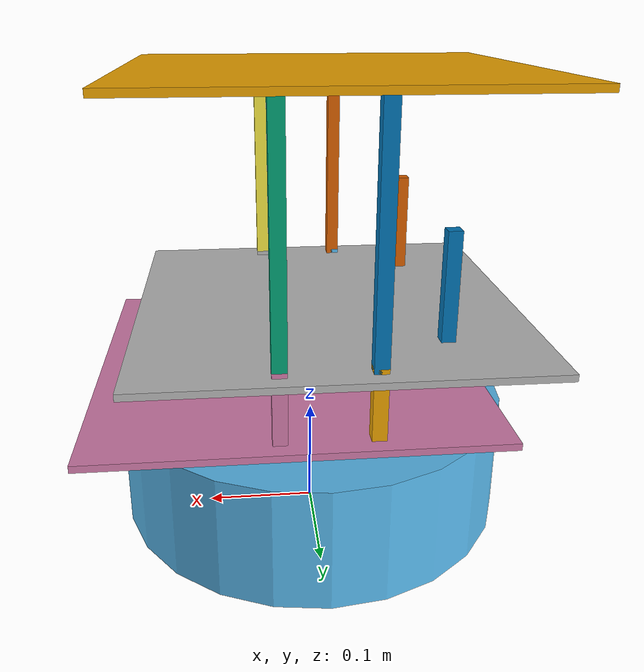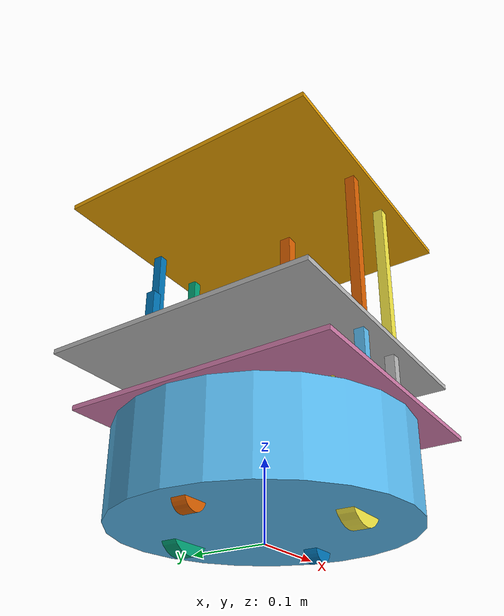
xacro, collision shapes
<?xml version="1.0"?>
<robot name="turtlebot2"
  xmlns:xacro="http://ros.org/wiki/xacro">

  <xacro:arg name="camera" default="true"/>
  <xacro:arg name="stereo" default="false"/>
  <xacro:arg name="namespace" default="turtlebot2"/>
  <xacro:property name="namespace" value="$(arg namespace)"/>

  <xacro:include filename="$(find custom_robots)/model/turtlebot2/turtlebot2_gz.urdf.xacro"/>
  <xacro:include filename="$(find custom_robots)/model/turtlebot2/turtlebot2_common.urdf.xacro"/>

  <xacro:turtlebot2 namespace="${namespace}"/>

  <xacro:if value="$(arg camera)">
    <xacro:camera xyz="-0.118 0 0.2812" rpy="0 0 0" name="camera" parent="base_link" namespace="${namespace}"/>
    <xacro:laser xyz="0 0 0.44" rpy="0 0 0" name="laser" parent="base_link" namespace="${namespace}"/>
  </xacro:if>

  <xacro:if value="$(arg stereo)">
    <xacro:fake_camera xyz="-0.118 0 0.23" rpy="0 0 0" name="depth_camera" parent="base_link"/>
    <xacro:stereo_camera xyz="-0.05 0.076 0.2424" rpy="0 0 0" name="camera_left" parent="base_link" namespace="${namespace}"/>
    <xacro:stereo_camera xyz="-0.05 -0.076 0.2424" rpy="0 0 0" name="camera_right" parent="base_link" namespace="${namespace}"/>
  </xacro:if>

</robot>

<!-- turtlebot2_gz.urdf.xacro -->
<robot name="vacuum_cleaner_gz"
  xmlns:xacro="http://ros.org/wiki/xacro">
  <xacro:macro name="camera" params="xyz rpy name parent namespace">

    <link name="${name}_link">
      <visual>
        <origin xyz="0 0 0" rpy="0 0 1.5708"/>
        <geometry>
          <mesh filename="$(find custom_robots)/model/turtlebot2/meshes/sensors/kinect.dae"/>
        </geometry>
      </visual>
    </link>

    <joint name="${name}_to_${parent}" type="fixed">
      <parent link="${parent}"/>
      <child link="${name}_link"/>
      <origin xyz="${xyz}" rpy="${rpy}"/>
    </joint>

    <gazebo reference="${name}_link">
      <sensor name="${name}" type="camera">
        <always_on>true</always_on>
        <visualize>false</visualize>
        <update_rate>5</update_rate>
        <topic>/${namespace}/${name}/image_raw</topic>
        <camera name="camera">
          <camera_info_topic>/${namespace}/${name}/camera_info</camera_info_topic>
          <horizontal_fov>1.0472</horizontal_fov>
          <image>
            <width>640</width>
            <height>480</height>
            <format>B8G8R8</format>
          </image>
          <clip>
            <near>0.1</near>
            <far>8</far>
          </clip>
        </camera>
      </sensor>
    </gazebo>
  </xacro:macro>

  <xacro:macro name="fake_camera" params="xyz rpy name parent">

    <link name="${name}_link">
      <visual>
        <origin xyz="0 0 0" rpy="0 0 1.5708"/>
        <geometry>
          <mesh filename="$(find custom_robots)/model/turtlebot2/meshes/sensors/kinect.dae"/>
        </geometry>
      </visual>
    </link>

    <joint name="${name}_to_${parent}" type="fixed">
      <parent link="${parent}"/>
      <child link="${name}_link"/>
      <origin xyz="${xyz}" rpy="${rpy}"/>
    </joint>
  </xacro:macro>

  <xacro:macro name="stereo_camera" params="xyz rpy name parent namespace">

    <link name="${name}_link">
    </link>

    <joint name="${name}_to_${parent}" type="fixed">
      <parent link="${parent}"/>
      <child link="${name}_link"/>
      <origin xyz="${xyz}" rpy="${rpy}"/>
    </joint>

    <gazebo reference="${name}_link">
      <sensor name="${name}" type="camera">
        <always_on>true</always_on>
        <visualize>false</visualize>
        <update_rate>5</update_rate>
        <topic>/${namespace}/${name}/image_raw</topic>
        <camera name="camera">
          <camera_info_topic>/${namespace}/${name}/camera_info</camera_info_topic>
          <horizontal_fov>1.570000</horizontal_fov>
          <image>
            <width>640</width>
            <height>480</height>
            <format>R8G8B8</format>
          </image>
          <clip>
            <near>0.3</near>
            <far>15</far>
          </clip>
          <noise>
            <type>gaussian</type>
            <mean>0.0</mean>
            <stddev>0.007</stddev>
          </noise>
        </camera>
      </sensor>
    </gazebo>
  </xacro:macro>

  <xacro:macro name="laser" params="xyz rpy name parent namespace">
    <link name="${name}_link">
      <visual>
        <geometry>
          <mesh filename="file://$(find custom_robots)/models/f1/meshes/hokuyo.dae" scale="0.1 0.1 0.1"/>
        </geometry>
      </visual>
    </link>

    <joint name="${name}_to_${parent}" type="fixed">
      <parent link="${parent}"/>
      <child link="${name}_link"/>
      <origin xyz="${xyz}" rpy="${rpy}"/>
    </joint>

    <gazebo reference="${name}_link">
      <sensor name="${name}" type="gpu_lidar">
        <always_on>1</always_on>
        <visualize>1</visualize>
        <update_rate>5</update_rate>
        <topic>/${namespace}/${name}/scan</topic>
        <gz_frame_id>laser</gz_frame_id>
        <lidar>
          <scan>
            <horizontal>
              <samples>90</samples>
              <resolution>1</resolution>
              <min_angle>-3.14</min_angle>
              <max_angle>3.14</max_angle>
            </horizontal>
          </scan>
          <range>
            <min>0.08</min>
            <max>10</max>
            <resolution>0.01</resolution>
          </range>
        </lidar>
      </sensor>
    </gazebo>
  </xacro:macro>

  <xacro:macro name="bumper" params="topic name namespace">
    <gz>
      <sensor name='${name}' type='contact'>
        <always_on>true</always_on>
        <update_rate>20</update_rate>
        <contact>
          <collision>${name}_collision</collision>
          <topic>/${namespace}/${topic}</topic>
        </contact>
      </sensor>
    </gz>
  </xacro:macro>

  <xacro:macro name="imu" params="namespace">
    <gazebo>
      <plugin filename="gz-sim-imu-system" name="gz::sim::systems::Imu">
      </plugin>

      <gazebo reference="gyro_link">
        <sensor name='imu' type='imu'>
          <always_on>1</always_on>
          <update_rate>50</update_rate>
          <topic>/${namespace}/imu</topic>
          <imu>
            <noise>
              <type>gaussian</type>
              <rate>
                <mean>0.0</mean>
                <stddev>${0.0014*0.0014}</stddev>                <!-- 0.25 x 0.25 (deg/s) -->
                <bias_mean>0.0</bias_mean>
                <bias_stddev>0.0</bias_stddev>
              </rate>
              <accel>                <!-- not used in the plugin and real robot, hence using tutorial values -->
                <mean>0.0</mean>
                <stddev>1.7e-2</stddev>
                <bias_mean>0.1</bias_mean>
                <bias_stddev>0.001</bias_stddev>
              </accel>
            </noise>
          </imu>
        </sensor>
      </gazebo>
    </gazebo>
  </xacro:macro>

  <xacro:macro name="extra">
    <gazebo reference="wheel_left_link">
      <mu1>1.0</mu1>
      <mu2>1.0</mu2>
      <kp>1000000.0</kp>
      <kd>100.0</kd>
      <minDepth>0.001</minDepth>
      <maxVel>1.0</maxVel>
    </gazebo>

    <gazebo reference="wheel_right_link">
      <mu1>1.0</mu1>
      <mu2>1.0</mu2>
      <kp>1000000.0</kp>
      <kd>100.0</kd>
      <minDepth>0.001</minDepth>
      <maxVel>1.0</maxVel>
    </gazebo>

    <gazebo reference="caster_front_link">
      <mu1>0.0</mu1>
      <mu2>0.0</mu2>
      <kp>1000000.0</kp>
      <kd>100.0</kd>
      <minDepth>0.001</minDepth>
      <maxVel>1.0</maxVel>
    </gazebo>

    <gazebo reference="caster_back_link">
      <mu1>0.0</mu1>
      <mu2>0.0</mu2>
      <kp>1000000.0</kp>
      <kd>100.0</kd>
      <minDepth>0.001</minDepth>
      <maxVel>1.0</maxVel>
    </gazebo>
  </xacro:macro>

  <xacro:macro name="velocity" params="namespace">
    <gazebo>
      <plugin filename="gz-sim-diff-drive-system" name="gz::sim::systems::DiffDrive">
        <publish_tf>1</publish_tf>
        <left_joint>wheel_left_joint</left_joint>
        <right_joint>wheel_right_joint</right_joint>
        <wheel_separation>.230</wheel_separation>
        <wheel_diameter>0.070</wheel_diameter>
        <topic>/${namespace}/cmd_vel</topic>
      </plugin>
    </gazebo>
  </xacro:macro>

  <xacro:macro name="odom" params="namespace freq">
    <gazebo>
      <plugin filename="gz-sim-odometry-publisher-system" name="gz::sim::systems::OdometryPublisher">
        <odom_frame>odom</odom_frame>
        <robot_base_frame>base_footprint</robot_base_frame>
        <odom_publish_frequency>${freq}</odom_publish_frequency>
        <odom_topic>/${namespace}/odom</odom_topic>
        <dimensions>3</dimensions>
      </plugin>
    </gazebo>
  </xacro:macro>
</robot>

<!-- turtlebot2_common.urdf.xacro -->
<robot name="kobuki"
  xmlns:xacro="http://ros.org/wiki/xacro">
  <xacro:include filename="$(find custom_robots)/model/turtlebot2/common_properties.urdf.xacro"/>
  <xacro:include filename="$(find custom_robots)/model/turtlebot2/turtlebot2_gz.urdf.xacro"/>

  <!-- Poles -->
  <xacro:macro name="pole" params="parent name xyz height type">

    <link name="pole_${type}_${name}">
      <visual>
        <geometry>
          <mesh filename="$(find custom_robots)/model/turtlebot2/meshes/stacks/hexagons/pole_${type}.dae"/>
        </geometry>
      </visual>
      <collision>
        <geometry>
          <box size="0.012 0.012 ${height}"/>
        </geometry>
      </collision>
    </link>

    <joint name="pole_${type}_${name}_to_${parent}" type="fixed">
      <origin xyz="${xyz}" rpy="0 0 0" />
      <parent link="${parent}"/>
      <child link="pole_${type}_${name}" />
    </joint>

  </xacro:macro>

  <!-- Plates -->
  <xacro:macro name="plate" params="parent xyz type">

    <link name="plate_${type}">
      <visual>
        <geometry>
          <mesh filename="$(find custom_robots)/model/turtlebot2/meshes/stacks/hexagons/plate_${type}.dae"/>
        </geometry>
      </visual>
      <collision>
        <geometry>
          <box size="0.34 0.34 0.006"/>
        </geometry>
      </collision>
    </link>

    <joint name="plate_${type}_to_${parent}" type="fixed">
      <origin xyz="${xyz}" rpy="0 0 0" />
      <parent link="${parent}"/>
      <child link="plate_${type}" />
    </joint>

  </xacro:macro>

  <!-- Kobuki -->
  <xacro:macro name="turtlebot2" params="namespace">
    <link name="base_footprint"/>
    <joint name="base_joint" type="fixed">
      <origin xyz="0 0 0.0102" rpy="0 0 0" />
      <parent link="base_footprint"/>
      <child link="base_link" />
    </joint>
    <link name="base_link">
      <visual>
        <geometry>
          <!-- new mesh -->
          <mesh filename="$(find custom_robots)/model/turtlebot2/meshes/main_body.dae" />
        </geometry>
        <origin xyz="0.001 0 0.05199" rpy="0 0 0"/>
      </visual>
      <collision name="base">
        <geometry>
          <cylinder length="0.10938" radius="0.178"/>
        </geometry>
        <origin xyz="0.0 0 0.05949" rpy="0 0 0"/>
      </collision>
      <inertial>
        <!-- COM experimentally determined -->
        <origin xyz="0.01 0 0"/>
        <mass value="2.4"/>
        <!-- 2.4/2.6 kg for small/big battery pack -->
        <inertia ixx="0.019995" ixy="0.0" ixz="0.0" iyy="0.019995" iyz="0.0" izz="0.03675" />
      </inertial>
    </link>

    <joint name="wheel_left_joint" type="continuous">
      <parent link="base_link"/>
      <child link="wheel_left_link"/>
      <origin xyz="0.00 ${0.23/2} 0.0250" rpy="${-M_PI/2} 0 0"/>
      <axis xyz="0 0 1"/>
    </joint>
    <link name="wheel_left_link">
      <visual>
        <geometry>
          <mesh filename="$(find custom_robots)/model/turtlebot2/meshes/wheel.dae"/>
        </geometry>
        <origin xyz="0 0 0" rpy="0 0 0"/>
      </visual>
      <collision>
        <geometry>
          <cylinder length="0.0206" radius="0.035"/>
        </geometry>
        <origin rpy="0 0 0" xyz="0 0 0"/>
      </collision>
      <inertial>
        <mass value="0.01" />
        <origin xyz="0 0 0" />
        <inertia ixx="0.001" ixy="0.0" ixz="0.0" iyy="0.001" iyz="0.0" izz="0.001" />
      </inertial>
    </link>

    <joint name="wheel_right_joint" type="continuous">
      <parent link="base_link"/>
      <child link="wheel_right_link"/>
      <origin xyz="0.00 -${0.23/2} 0.0250" rpy="${-M_PI/2} 0 0"/>
      <axis xyz="0 0 1"/>
    </joint>
    <link name="wheel_right_link">
      <visual>
        <geometry>
          <mesh filename="$(find custom_robots)/model/turtlebot2/meshes/wheel.dae"/>
        </geometry>
        <origin xyz="0 0 0" rpy="0 0 0"/>
      </visual>
      <collision>
        <geometry>
          <cylinder length="0.0206" radius="0.035"/>
        </geometry>
        <origin rpy="0 0 0" xyz="0 0 0"/>
      </collision>
      <inertial>
        <mass value="0.01" />
        <origin xyz="0 0 0" />
        <inertia ixx="0.001" ixy="0.0" ixz="0.0" iyy="0.001" iyz="0.0" izz="0.001" />
      </inertial>
    </link>

    <joint name="caster_front_joint" type="fixed">
      <parent link="base_link"/>
      <child link="caster_front_link"/>
      <origin xyz="0.115 0.0 0.007" rpy="${-M_PI/2} 0 0"/>
    </joint>
    <link name="caster_front_link">
      <collision>
        <geometry>
          <cylinder length="0.0176" radius="0.017"/>
        </geometry>
        <origin rpy="0 0 0" xyz="0 0 0"/>
      </collision>
      <inertial>
        <mass value="0.01" />
        <origin xyz="0 0 0" />
        <inertia ixx="0.001" ixy="0.0" ixz="0.0" iyy="0.001" iyz="0.0" izz="0.001" />
      </inertial>
    </link>

    <joint name="caster_back_joint" type="fixed">
      <parent link="base_link"/>
      <child link="caster_back_link"/>
      <origin xyz="-0.135 0.0 0.009" rpy="${-M_PI/2} 0 0"/>
    </joint>
    <link name="caster_back_link">
      <collision>
        <geometry>
          <cylinder length="0.0176" radius="0.017"/>
        </geometry>
        <origin rpy="0 0 0" xyz="0 0 0"/>
      </collision>
      <inertial>
        <mass value="0.01" />
        <origin xyz="0 0 0" />
        <inertia ixx="0.001" ixy="0.0" ixz="0.0" iyy="0.001" iyz="0.0" izz="0.001" />
      </inertial>
    </link>

    <!-- Platform -->
    <xacro:pole parent="base_link" name="0" xyz="0.12 0.082 0.113" height="0.0492" type="bottom"/>
    <xacro:pole parent="base_link" name="1" xyz="0.055 0.12 0.113" height="0.0492" type="bottom"/>
    <xacro:pole parent="base_link" name="2" xyz="-0.055 0.12 0.113" height="0.0492" type="bottom"/>
    <xacro:pole parent="base_link" name="3" xyz="0.12 -0.082 0.113" height="0.0492" type="bottom"/>
    <xacro:pole parent="base_link" name="4" xyz="0.055 -0.12 0.113" height="0.0492" type="bottom"/>
    <xacro:pole parent="base_link" name="5" xyz="-0.055 -0.12 0.113" height="0.0492" type="bottom"/>
    <xacro:pole parent="base_link" name="0" xyz="-0.1024 0.098 0.2474" height="0.0936" type="sensor"/>
    <xacro:pole parent="base_link" name="1" xyz="-0.1024 -0.098 0.2474" height="0.0936" type="sensor"/>
    <xacro:pole parent="base_link" name="0" xyz="0.0381 0.1505 0.1742" height="0.0608" type="middle"/>
    <xacro:pole parent="base_link" name="1" xyz="0.0381 -0.1505 0.1742" height="0.0608" type="middle"/>
    <xacro:pole parent="base_link" name="2" xyz="-0.0381 0.1505 0.1742" height="0.0608" type="middle"/>
    <xacro:pole parent="base_link" name="3" xyz="-0.0381 -0.1505 0.1742" height="0.0608" type="middle"/>
    <xacro:pole parent="base_link" name="0" xyz="0.0381 0.1505 0.3022" height="0.2032" type="top"/>
    <xacro:pole parent="base_link" name="1" xyz="0.0381 -0.1505 0.3022" height="0.2032" type="top"/>
    <xacro:pole parent="base_link" name="2" xyz="-0.0381 0.1505 0.3022" height="0.2032" type="top"/>
    <xacro:pole parent="base_link" name="3" xyz="-0.0381 -0.1505 0.3022" height="0.2032" type="top"/>

    <xacro:plate parent="base_link" xyz="0.02364 0 0.1408" type="bottom"/>
    <xacro:plate parent="base_link" xyz="-0.01364 0 0.1976" type="middle"/>
    <xacro:plate parent="base_link" xyz="-0.01364 0 0.4068" type="top"/>

    <!-- Kobuki's sensors -->
    <joint name="gyro_joint" type="fixed">
      <axis xyz="0 1 0"/>
      <origin xyz="0.056 0.062 0.0202" rpy="0 0 0"/>
      <parent link="base_link"/>
      <child link="gyro_link"/>
    </joint>
    <link name="gyro_link">
      <inertial>
        <mass value="0.001"/>
        <origin xyz="0 0 0" rpy="0 0 0"/>
        <inertia ixx="0.0001" ixy="0" ixz="0" iyy="0.000001" iyz="0" izz="0.0001"/>
      </inertial>
    </link>

    <joint name="cliff_sensor_left_joint" type="fixed">
      <origin xyz="0.08734 0.13601 0.0214" rpy="0 ${M_PI/2} 0" />
      <parent link="base_link"/>
      <child link="cliff_sensor_left_link" />
    </joint>
    <link name="cliff_sensor_left_link">
      <inertial>
        <mass value="0.0001" />
        <origin xyz="0 0 0" />
        <inertia ixx="0.0001" ixy="0.0" ixz="0.0" iyy="0.0001" iyz="0.0" izz="0.0001" />
      </inertial>
    </link>

    <joint name="cliff_sensor_right_joint" type="fixed">
      <origin xyz="0.085 -0.13601 0.0214" rpy="0 ${M_PI/2} 0" />
      <parent link="base_link"/>
      <child link="cliff_sensor_right_link" />
    </joint>
    <link name="cliff_sensor_right_link">
      <inertial>
        <mass value="0.0001" />
        <origin xyz="0 0 0" />
        <inertia ixx="0.0001" ixy="0.0" ixz="0.0" iyy="0.0001" iyz="0.0" izz="0.0001" />
      </inertial>
    </link>

    <joint name="cliff_sensor_front_joint" type="fixed">
      <origin xyz="0.156 0.00 0.0214" rpy="0 ${M_PI/2} 0" />
      <parent link="base_link"/>
      <child link="cliff_sensor_front_link" />
    </joint>
    <link name="cliff_sensor_front_link">
      <inertial>
        <mass value="0.0001" />
        <origin xyz="0 0 0" />
        <inertia ixx="0.0001" ixy="0.0" ixz="0.0" iyy="0.0001" iyz="0.0" izz="0.0001" />
      </inertial>
    </link>

    <!-- Kobuki Gazebo simulation details -->
    <xacro:odom namespace="${namespace}" freq="20"/>
    <xacro:velocity namespace="${namespace}"/>
    <xacro:imu namespace="${namespace}"/>
    <xacro:extra/>

  </xacro:macro>
</robot>

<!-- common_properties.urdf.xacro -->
<!--
  Various useful properties such as constants and materials
 -->
<robot name="xacro_properties"
  xmlns:xacro="http://ros.org/wiki/xacro">
  <xacro:property name="M_PI" value="3.1415926535897931" />
  <xacro:property name="material_white">
    <material name="white">
      <color rgba="1 1 1 1"/>
    </material>
  </xacro:property>
  <xacro:property name="material_grey">
    <material name="grey">
      <color rgba="0.5 0.5 0.5 1"/>
    </material>
  </xacro:property>
  <xacro:property name="material_light_grey">
    <material name="light_grey">
      <color rgba="0.6 0.6 0.6 1"/>
    </material>
  </xacro:property>
  <xacro:property name="material_dark_grey">
    <material name="dark_grey">
      <color rgba="0.3 0.3 0.3 1"/>
    </material>
  </xacro:property>
  <xacro:property name="material_black">
    <material name="black">
      <color rgba="0.1 0.1 0.1 1"/>
    </material>
  </xacro:property>
  <xacro:property name="material_red">
    <material name="red">
      <color rgba="1 0 0 1"/>
    </material>
  </xacro:property>
  <xacro:property name="material_green">
    <material name="green">
      <color rgba="0.0 0.8 0.0 1"/>
    </material>
  </xacro:property>
  <xacro:property name="material_blue">
    <material name="blue">
      <color rgba="0.0 0.0 1.0 1"/>
    </material>
  </xacro:property>
  <xacro:property name="material_grey_blue">
    <material name="grey_blue">
      <color rgba="0.4 0.4 1.0 1"/>
    </material>
  </xacro:property>
  <xacro:property name="material_orange">
    <material name="orange">
      <color rgba="1.0 0.7 0.0 1"/>
    </material>
  </xacro:property>
</robot>
